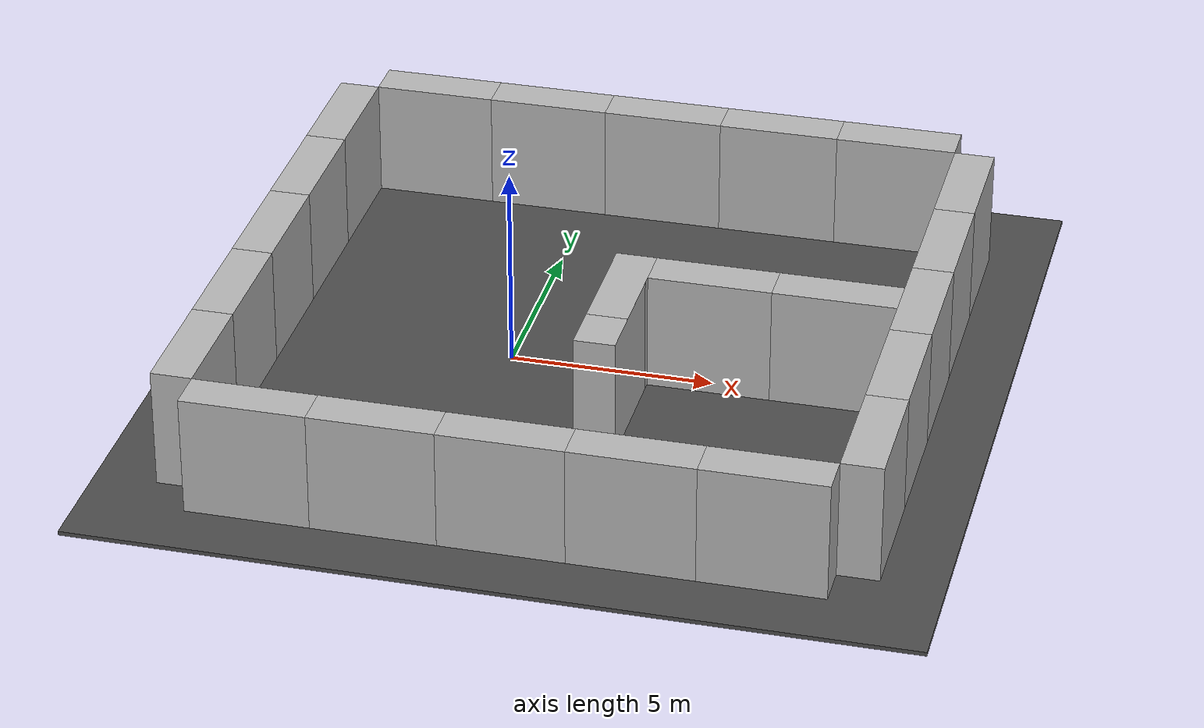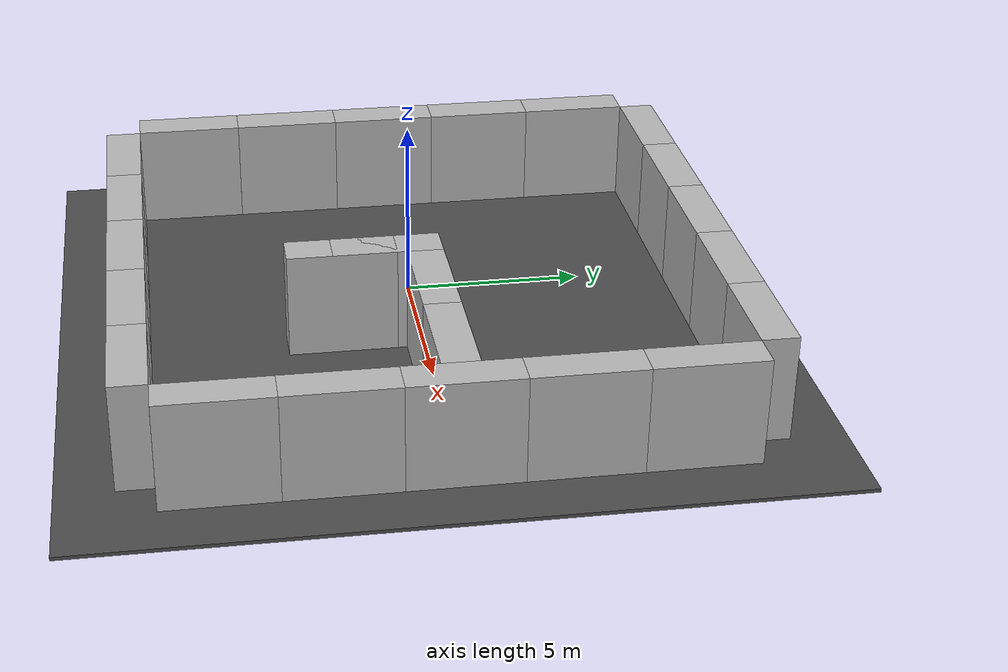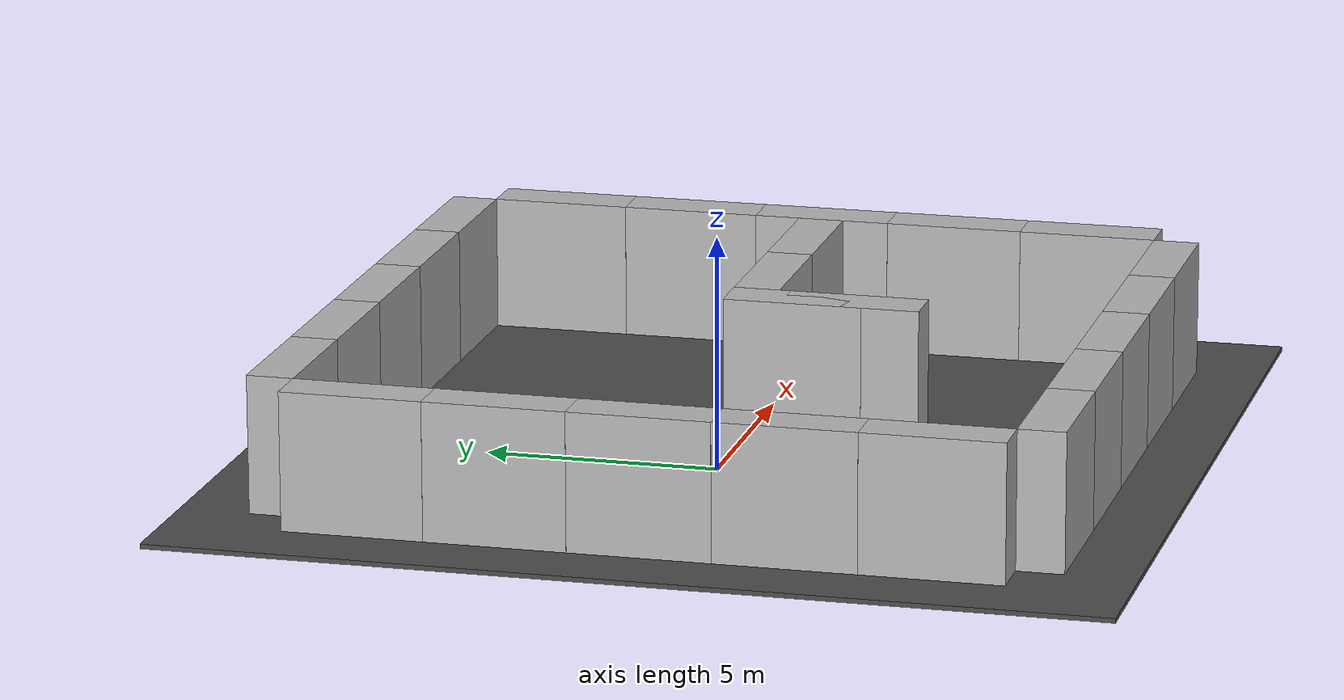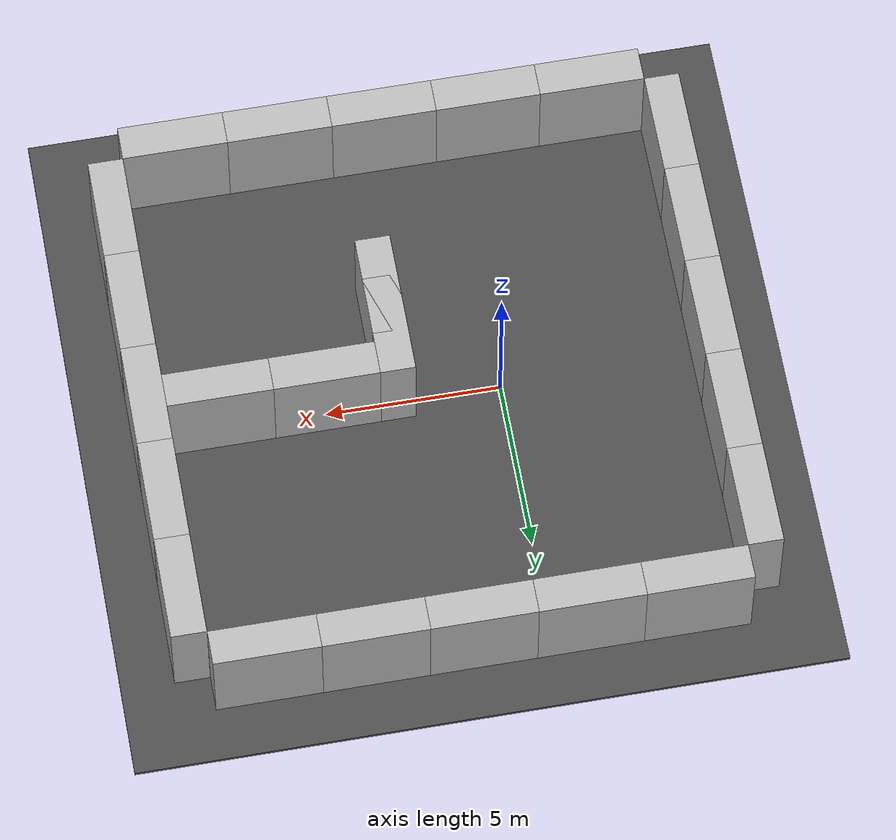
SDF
<sdf version="1.6">
 <world name="default">
  <light name="sun" type="directional">
   <pose>0 0 10 0 -0 0</pose>
   <diffuse>0.8 0.8 0.8 1</diffuse>
   <specular>0.2 0.2 0.2 1</specular>
   <attenuation>
    <range>1000</range>
    <constant>0.9</constant>
    <linear>0.01</linear>
    <quadratic>0.001</quadratic>
   </attenuation>
   <direction>-0.5 0.1 -0.9</direction>
  </light>
  <scene><ambient>0.4 0.4 0.4 1</ambient><background>0.7 0.7 0.7 1</background><shadows>1</shadows></scene>
  <spherical_coordinates>
   <surface_model>EARTH_WGS84</surface_model>
   <latitude_deg>0</latitude_deg>
   <longitude_deg>0</longitude_deg>
   <elevation>0</elevation>
   <heading_deg>0</heading_deg>
  </spherical_coordinates>
  <gravity>0 0 -9.8</gravity>
  <magnetic_field>6e-06 2.3e-05 -4.2e-05</magnetic_field>
  <atmosphere type="adiabatic"/>
  <audio><device>default</device></audio>
  <physics name="default_physics" default="0" type="ode">
   <max_step_size>0.001</max_step_size>
   <real_time_factor>1</real_time_factor>
   <real_time_update_rate>1000</real_time_update_rate>
  </physics>
  <model name="asphalt_plane_clone_clone_clone_0_clone">
   <static>1</static>
   <link name="link">
    <collision name="collision"><geometry><box><size>20 20 0.1</size></box></geometry></collision>
    <visual name="visual">
     <cast_shadows>0</cast_shadows>
     <geometry><box><size>20 20 0.1</size></box></geometry>
     <material>
      <script>
       <uri>model://asphalt_plane/materials/scripts</uri>
       <uri>model://asphalt_plane/materials/textures</uri>
       <name>vrc/asphalt</name>
      </script>
     </material>
    </visual>
    <velocity_decay><linear>0</linear><angular>0</angular></velocity_decay>
   </link>
   <pose>2 0 0 0 -0 0</pose>
  </model>
  <model name="brick_box_3x1x3_0_clone_5_clone_5_clone_0_clone">
   <static>1</static>
   <link name="chassis">
    <pose>0 0 1.5 0 -0 0</pose>
    <collision name="collision"><geometry><box><size>3 1 3</size></box></geometry></collision>
    <visual name="visual">
     <geometry><mesh><uri>model://brick_box_3x1x3/meshes/simple_box.dae</uri><scale>3 1 3</scale></mesh></geometry>
     <material>
      <script>
       <uri>model://brick_box_3x1x3/materials/scripts</uri>
       <uri>model://brick_box_3x1x3/materials/textures</uri>
       <name>BrickBox/Diffuse</name>
      </script>
     </material>
    </visual>
    <velocity_decay><linear>0</linear><angular>0</angular></velocity_decay>
   </link>
   <pose>-4 8 0 0 -0 0</pose>
  </model>
  <model name="brick_box_3x1x3_14_clone_3_clone_clone_2">
   <static>1</static>
   <link name="chassis">
    <pose>0 0 1.5 0 -0 0</pose>
    <collision name="collision"><geometry><box><size>3 1 3</size></box></geometry></collision>
    <visual name="visual">
     <geometry><mesh><uri>model://brick_box_3x1x3/meshes/simple_box.dae</uri><scale>3 1 3</scale></mesh></geometry>
     <material>
      <script>
       <uri>model://brick_box_3x1x3/materials/scripts</uri>
       <uri>model://brick_box_3x1x3/materials/textures</uri>
       <name>BrickBox/Diffuse</name>
      </script>
     </material>
    </visual>
    <velocity_decay><linear>0</linear><angular>0</angular></velocity_decay>
   </link>
   <pose>10 0 0 0 -0 1.57</pose>
  </model>
  <model name="brick_box_3x1x3_14_clone_3_clone_clone_7">
   <static>1</static>
   <link name="chassis">
    <pose>0 0 1.5 0 -0 0</pose>
    <collision name="collision"><geometry><box><size>3 1 3</size></box></geometry></collision>
    <visual name="visual">
     <geometry><mesh><uri>model://brick_box_3x1x3/meshes/simple_box.dae</uri><scale>3 1 3</scale></mesh></geometry>
     <material>
      <script>
       <uri>model://brick_box_3x1x3/materials/scripts</uri>
       <uri>model://brick_box_3x1x3/materials/textures</uri>
       <name>BrickBox/Diffuse</name>
      </script>
     </material>
    </visual>
    <velocity_decay><linear>0</linear><angular>0</angular></velocity_decay>
   </link>
   <pose>-6 6 0 0 -0 1.57</pose>
  </model>
  <model name="brick_box_3x1x3_14_clone_3_clone_clone_9">
   <static>1</static>
   <link name="chassis">
    <pose>0 0 1.5 0 -0 0</pose>
    <collision name="collision"><geometry><box><size>3 1 3</size></box></geometry></collision>
    <visual name="visual">
     <geometry><mesh><uri>model://brick_box_3x1x3/meshes/simple_box.dae</uri><scale>3 1 3</scale></mesh></geometry>
     <material>
      <script>
       <uri>model://brick_box_3x1x3/materials/scripts</uri>
       <uri>model://brick_box_3x1x3/materials/textures</uri>
       <name>BrickBox/Diffuse</name>
      </script>
     </material>
    </visual>
    <velocity_decay><linear>0</linear><angular>0</angular></velocity_decay>
   </link>
   <pose>-6 -6 0 0 -0 1.57</pose>
  </model>
  <model name="brick_box_3x1x3_0_clone_5_clone_5_clone_3_clone_3">
   <static>1</static>
   <link name="chassis">
    <pose>0 0 1.5 0 -0 0</pose>
    <collision name="collision"><geometry><box><size>3 1 3</size></box></geometry></collision>
    <visual name="visual">
     <geometry><mesh><uri>model://brick_box_3x1x3/meshes/simple_box.dae</uri><scale>3 1 3</scale></mesh></geometry>
     <material>
      <script>
       <uri>model://brick_box_3x1x3/materials/scripts</uri>
       <uri>model://brick_box_3x1x3/materials/textures</uri>
       <name>BrickBox/Diffuse</name>
      </script>
     </material>
    </visual>
    <velocity_decay><linear>0</linear><angular>0</angular></velocity_decay>
   </link>
   <pose>-4 -8 0 0 -0 0</pose>
  </model>
  <model name="brick_box_3x1x3_14_clone_3_clone_clone_7_clone">
   <static>1</static>
   <link name="chassis">
    <pose>0 0 1.5 0 -0 0</pose>
    <collision name="collision"><geometry><box><size>3 1 3</size></box></geometry></collision>
    <visual name="visual">
     <geometry><mesh><uri>model://brick_box_3x1x3/meshes/simple_box.dae</uri><scale>3 1 3</scale></mesh></geometry>
     <material>
      <script>
       <uri>model://brick_box_3x1x3/materials/scripts</uri>
       <uri>model://brick_box_3x1x3/materials/textures</uri>
       <name>BrickBox/Diffuse</name>
      </script>
     </material>
    </visual>
    <velocity_decay><linear>0</linear><angular>0</angular></velocity_decay>
   </link>
   <pose>-6 3 0 0 -0 1.57</pose>
  </model>
  <model name="brick_box_3x1x3_14_clone_3_clone_clone_7_clone_0">
   <static>1</static>
   <link name="chassis">
    <pose>0 0 1.5 0 -0 0</pose>
    <collision name="collision"><geometry><box><size>3 1 3</size></box></geometry></collision>
    <visual name="visual">
     <geometry><mesh><uri>model://brick_box_3x1x3/meshes/simple_box.dae</uri><scale>3 1 3</scale></mesh></geometry>
     <material>
      <script>
       <uri>model://brick_box_3x1x3/materials/scripts</uri>
       <uri>model://brick_box_3x1x3/materials/textures</uri>
       <name>BrickBox/Diffuse</name>
      </script>
     </material>
    </visual>
    <velocity_decay><linear>0</linear><angular>0</angular></velocity_decay>
   </link>
   <pose>-6 0 0 0 -0 1.57</pose>
  </model>
  <model name="brick_box_3x1x3_14_clone_3_clone_clone_7_clone_1">
   <static>1</static>
   <link name="chassis">
    <pose>0 0 1.5 0 -0 0</pose>
    <collision name="collision"><geometry><box><size>3 1 3</size></box></geometry></collision>
    <visual name="visual">
     <geometry><mesh><uri>model://brick_box_3x1x3/meshes/simple_box.dae</uri><scale>3 1 3</scale></mesh></geometry>
     <material>
      <script>
       <uri>model://brick_box_3x1x3/materials/scripts</uri>
       <uri>model://brick_box_3x1x3/materials/textures</uri>
       <name>BrickBox/Diffuse</name>
      </script>
     </material>
    </visual>
    <velocity_decay><linear>0</linear><angular>0</angular></velocity_decay>
   </link>
   <pose>-6 -3 0 0 -0 1.57</pose>
  </model>
  <model name="brick_box_3x1x3_0_clone_5_clone_5_clone_0_clone_clone">
   <static>1</static>
   <link name="chassis">
    <pose>0 0 1.5 0 -0 0</pose>
    <collision name="collision"><geometry><box><size>3 1 3</size></box></geometry></collision>
    <visual name="visual">
     <geometry><mesh><uri>model://brick_box_3x1x3/meshes/simple_box.dae</uri><scale>3 1 3</scale></mesh></geometry>
     <material>
      <script>
       <uri>model://brick_box_3x1x3/materials/scripts</uri>
       <uri>model://brick_box_3x1x3/materials/textures</uri>
       <name>BrickBox/Diffuse</name>
      </script>
     </material>
    </visual>
    <velocity_decay><linear>0</linear><angular>0</angular></velocity_decay>
   </link>
   <pose>-1 8 0 0 -0 0</pose>
  </model>
  <model name="brick_box_3x1x3_0_clone_5_clone_5_clone_0_clone_clone_0">
   <static>1</static>
   <link name="chassis">
    <pose>0 0 1.5 0 -0 0</pose>
    <collision name="collision"><geometry><box><size>3 1 3</size></box></geometry></collision>
    <visual name="visual">
     <geometry><mesh><uri>model://brick_box_3x1x3/meshes/simple_box.dae</uri><scale>3 1 3</scale></mesh></geometry>
     <material>
      <script>
       <uri>model://brick_box_3x1x3/materials/scripts</uri>
       <uri>model://brick_box_3x1x3/materials/textures</uri>
       <name>BrickBox/Diffuse</name>
      </script>
     </material>
    </visual>
    <velocity_decay><linear>0</linear><angular>0</angular></velocity_decay>
   </link>
   <pose>2 8 0 0 -0 0</pose>
  </model>
  <model name="brick_box_3x1x3_0_clone_5_clone_5_clone_0_clone_clone_1">
   <static>1</static>
   <link name="chassis">
    <pose>0 0 1.5 0 -0 0</pose>
    <collision name="collision"><geometry><box><size>3 1 3</size></box></geometry></collision>
    <visual name="visual">
     <geometry><mesh><uri>model://brick_box_3x1x3/meshes/simple_box.dae</uri><scale>3 1 3</scale></mesh></geometry>
     <material>
      <script>
       <uri>model://brick_box_3x1x3/materials/scripts</uri>
       <uri>model://brick_box_3x1x3/materials/textures</uri>
       <name>BrickBox/Diffuse</name>
      </script>
     </material>
    </visual>
    <velocity_decay><linear>0</linear><angular>0</angular></velocity_decay>
   </link>
   <pose>5 8 0 0 -0 0</pose>
  </model>
  <model name="brick_box_3x1x3_0_clone_5_clone_5_clone_3_clone_3_clone">
   <static>1</static>
   <link name="chassis">
    <pose>0 0 1.5 0 -0 0</pose>
    <collision name="collision"><geometry><box><size>3 1 3</size></box></geometry></collision>
    <visual name="visual">
     <geometry><mesh><uri>model://brick_box_3x1x3/meshes/simple_box.dae</uri><scale>3 1 3</scale></mesh></geometry>
     <material>
      <script>
       <uri>model://brick_box_3x1x3/materials/scripts</uri>
       <uri>model://brick_box_3x1x3/materials/textures</uri>
       <name>BrickBox/Diffuse</name>
      </script>
     </material>
    </visual>
    <velocity_decay><linear>0</linear><angular>0</angular></velocity_decay>
   </link>
   <pose>-1 -8 0 0 -0 0</pose>
  </model>
  <model name="brick_box_3x1x3_0_clone_5_clone_5_clone_3_clone_3_clone_0">
   <static>1</static>
   <link name="chassis">
    <pose>0 0 1.5 0 -0 0</pose>
    <collision name="collision"><geometry><box><size>3 1 3</size></box></geometry></collision>
    <visual name="visual">
     <geometry><mesh><uri>model://brick_box_3x1x3/meshes/simple_box.dae</uri><scale>3 1 3</scale></mesh></geometry>
     <material>
      <script>
       <uri>model://brick_box_3x1x3/materials/scripts</uri>
       <uri>model://brick_box_3x1x3/materials/textures</uri>
       <name>BrickBox/Diffuse</name>
      </script>
     </material>
    </visual>
    <velocity_decay><linear>0</linear><angular>0</angular></velocity_decay>
   </link>
   <pose>2 -8 0 0 -0 0</pose>
  </model>
  <model name="brick_box_3x1x3_0_clone_5_clone_5_clone_3_clone_3_clone_1">
   <static>1</static>
   <link name="chassis">
    <pose>0 0 1.5 0 -0 0</pose>
    <collision name="collision"><geometry><box><size>3 1 3</size></box></geometry></collision>
    <visual name="visual">
     <geometry><mesh><uri>model://brick_box_3x1x3/meshes/simple_box.dae</uri><scale>3 1 3</scale></mesh></geometry>
     <material>
      <script>
       <uri>model://brick_box_3x1x3/materials/scripts</uri>
       <uri>model://brick_box_3x1x3/materials/textures</uri>
       <name>BrickBox/Diffuse</name>
      </script>
     </material>
    </visual>
    <velocity_decay><linear>0</linear><angular>0</angular></velocity_decay>
   </link>
   <pose>5 -8 0 0 -0 0</pose>
  </model>
  <model name="brick_box_3x1x3_0_clone_5_clone_5_clone_0_clone_clone_1_clone">
   <static>1</static>
   <link name="chassis">
    <pose>0 0 1.5 0 -0 0</pose>
    <collision name="collision"><geometry><box><size>3 1 3</size></box></geometry></collision>
    <visual name="visual">
     <geometry><mesh><uri>model://brick_box_3x1x3/meshes/simple_box.dae</uri><scale>3 1 3</scale></mesh></geometry>
     <material>
      <script>
       <uri>model://brick_box_3x1x3/materials/scripts</uri>
       <uri>model://brick_box_3x1x3/materials/textures</uri>
       <name>BrickBox/Diffuse</name>
      </script>
     </material>
    </visual>
    <velocity_decay><linear>0</linear><angular>0</angular></velocity_decay>
   </link>
   <pose>8 8 0 0 -0 0</pose>
  </model>
  <model name="brick_box_3x1x3_0_clone_5_clone_5_clone_3_clone_3_clone_1_clone">
   <static>1</static>
   <link name="chassis">
    <pose>0 0 1.5 0 -0 0</pose>
    <collision name="collision"><geometry><box><size>3 1 3</size></box></geometry></collision>
    <visual name="visual">
     <geometry><mesh><uri>model://brick_box_3x1x3/meshes/simple_box.dae</uri><scale>3 1 3</scale></mesh></geometry>
     <material>
      <script>
       <uri>model://brick_box_3x1x3/materials/scripts</uri>
       <uri>model://brick_box_3x1x3/materials/textures</uri>
       <name>BrickBox/Diffuse</name>
      </script>
     </material>
    </visual>
    <velocity_decay><linear>0</linear><angular>0</angular></velocity_decay>
   </link>
   <pose>8 -8 0 0 -0 0</pose>
  </model>
  <model name="brick_box_3x1x3_14_clone_3_clone_clone_2_clone">
   <static>1</static>
   <link name="chassis">
    <pose>0 0 1.5 0 -0 0</pose>
    <collision name="collision"><geometry><box><size>3 1 3</size></box></geometry></collision>
    <visual name="visual">
     <geometry><mesh><uri>model://brick_box_3x1x3/meshes/simple_box.dae</uri><scale>3 1 3</scale></mesh></geometry>
     <material>
      <script>
       <uri>model://brick_box_3x1x3/materials/scripts</uri>
       <uri>model://brick_box_3x1x3/materials/textures</uri>
       <name>BrickBox/Diffuse</name>
      </script>
     </material>
    </visual>
    <velocity_decay><linear>0</linear><angular>0</angular></velocity_decay>
   </link>
   <pose>10 -3 0 0 -0 1.57</pose>
  </model>
  <model name="brick_box_3x1x3_14_clone_3_clone_clone_2_clone_0">
   <static>1</static>
   <link name="chassis">
    <pose>0 0 1.5 0 -0 0</pose>
    <collision name="collision"><geometry><box><size>3 1 3</size></box></geometry></collision>
    <visual name="visual">
     <geometry><mesh><uri>model://brick_box_3x1x3/meshes/simple_box.dae</uri><scale>3 1 3</scale></mesh></geometry>
     <material>
      <script>
       <uri>model://brick_box_3x1x3/materials/scripts</uri>
       <uri>model://brick_box_3x1x3/materials/textures</uri>
       <name>BrickBox/Diffuse</name>
      </script>
     </material>
    </visual>
    <velocity_decay><linear>0</linear><angular>0</angular></velocity_decay>
   </link>
   <pose>10 -6 0 0 -0 1.57</pose>
  </model>
  <model name="brick_box_3x1x3_14_clone_3_clone_clone_2_clone_1">
   <static>1</static>
   <link name="chassis">
    <pose>0 0 1.5 0 -0 0</pose>
    <collision name="collision"><geometry><box><size>3 1 3</size></box></geometry></collision>
    <visual name="visual">
     <geometry><mesh><uri>model://brick_box_3x1x3/meshes/simple_box.dae</uri><scale>3 1 3</scale></mesh></geometry>
     <material>
      <script>
       <uri>model://brick_box_3x1x3/materials/scripts</uri>
       <uri>model://brick_box_3x1x3/materials/textures</uri>
       <name>BrickBox/Diffuse</name>
      </script>
     </material>
    </visual>
    <velocity_decay><linear>0</linear><angular>0</angular></velocity_decay>
   </link>
   <pose>10 3 0 0 -0 1.57</pose>
  </model>
  <model name="brick_box_3x1x3_14_clone_3_clone_clone_2_clone_2">
   <static>1</static>
   <link name="chassis">
    <pose>0 0 1.5 0 -0 0</pose>
    <collision name="collision"><geometry><box><size>3 1 3</size></box></geometry></collision>
    <visual name="visual">
     <geometry><mesh><uri>model://brick_box_3x1x3/meshes/simple_box.dae</uri><scale>3 1 3</scale></mesh></geometry>
     <material>
      <script>
       <uri>model://brick_box_3x1x3/materials/scripts</uri>
       <uri>model://brick_box_3x1x3/materials/textures</uri>
       <name>BrickBox/Diffuse</name>
      </script>
     </material>
    </visual>
    <velocity_decay><linear>0</linear><angular>0</angular></velocity_decay>
   </link>
   <pose>10 6 0 0 -0 1.57</pose>
  </model>
  <model name="brick_box_3x1x3_0_clone_5_clone_5_clone_3_clone_3_clone_1_clone_clone">
   <static>1</static>
   <link name="chassis">
    <pose>0 0 1.5 0 -0 0</pose>
    <collision name="collision"><geometry><box><size>3 1 3</size></box></geometry></collision>
    <visual name="visual">
     <geometry><mesh><uri>model://brick_box_3x1x3/meshes/simple_box.dae</uri><scale>3 1 3</scale></mesh></geometry>
     <material>
      <script>
       <uri>model://brick_box_3x1x3/materials/scripts</uri>
       <uri>model://brick_box_3x1x3/materials/textures</uri>
       <name>BrickBox/Diffuse</name>
      </script>
     </material>
    </visual>
    <velocity_decay><linear>0</linear><angular>0</angular></velocity_decay>
   </link>
   <pose>8 0 0 0 -0 0</pose>
  </model>
  <model name="brick_box_3x1x3_0_clone_5_clone_5_clone_3_clone_3_clone_1_clone_clone_0">
   <static>1</static>
   <link name="chassis">
    <pose>0 0 1.5 0 -0 0</pose>
    <collision name="collision"><geometry><box><size>3 1 3</size></box></geometry></collision>
    <visual name="visual">
     <geometry><mesh><uri>model://brick_box_3x1x3/meshes/simple_box.dae</uri><scale>3 1 3</scale></mesh></geometry>
     <material>
      <script>
       <uri>model://brick_box_3x1x3/materials/scripts</uri>
       <uri>model://brick_box_3x1x3/materials/textures</uri>
       <name>BrickBox/Diffuse</name>
      </script>
     </material>
    </visual>
    <velocity_decay><linear>0</linear><angular>0</angular></velocity_decay>
   </link>
   <pose>5 0 0 0 -0 0</pose>
  </model>
  <model name="brick_box_3x1x3_14_clone_3_clone_clone_2_clone_1_clone">
   <static>1</static>
   <link name="chassis">
    <pose>0 0 1.5 0 -0 0</pose>
    <collision name="collision"><geometry><box><size>3 1 3</size></box></geometry></collision>
    <visual name="visual">
     <geometry><mesh><uri>model://brick_box_3x1x3/meshes/simple_box.dae</uri><scale>3 1 3</scale></mesh></geometry>
     <material>
      <script>
       <uri>model://brick_box_3x1x3/materials/scripts</uri>
       <uri>model://brick_box_3x1x3/materials/textures</uri>
       <name>BrickBox/Diffuse</name>
      </script>
     </material>
    </visual>
    <velocity_decay><linear>0</linear><angular>0</angular></velocity_decay>
   </link>
   <pose>3 -1 0 0 -0 1.57</pose>
  </model>
  <model name="brick_box_3x1x3_14_clone_3_clone_clone_2_clone_1_clone_0">
   <static>1</static>
   <link name="chassis">
    <pose>0 0 1.5 0 -0 0</pose>
    <collision name="collision"><geometry><box><size>3 1 3</size></box></geometry></collision>
    <visual name="visual">
     <geometry><mesh><uri>model://brick_box_3x1x3/meshes/simple_box.dae</uri><scale>3 1 3</scale></mesh></geometry>
     <material>
      <script>
       <uri>model://brick_box_3x1x3/materials/scripts</uri>
       <uri>model://brick_box_3x1x3/materials/textures</uri>
       <name>BrickBox/Diffuse</name>
      </script>
     </material>
    </visual>
    <velocity_decay><linear>0</linear><angular>0</angular></velocity_decay>
   </link>
   <pose>3 -2.25 0 0 -0 1.57</pose>
  </model>
 </world>
</sdf>
